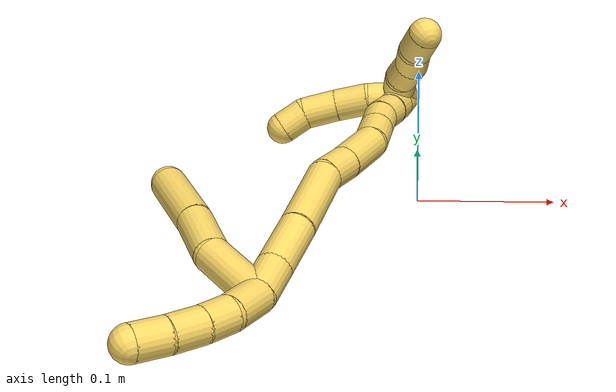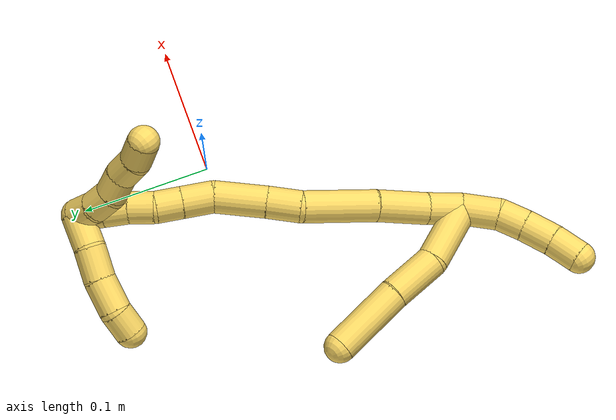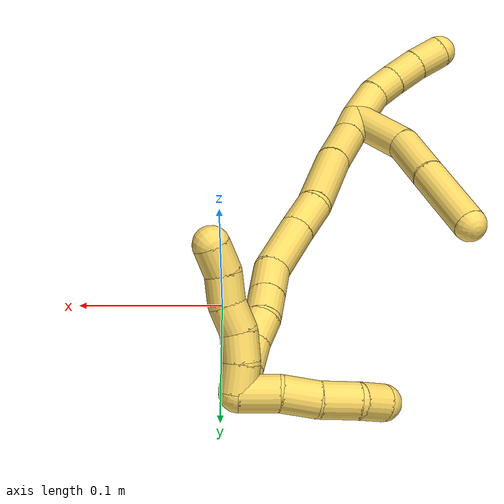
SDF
<sdf version="1.7">
 <world name="default">
  <model name="5">
   <static>0</static>
   <link name="5">
    <collision name="collision-cylinder-e_1_2_8">
     <pose>-0.001806 -0.007518 0.02417 0.301572 -0.071234 -0.010828</pose>
     <geometry><cylinder><radius>0.0125</radius><length>0.050753</length></cylinder></geometry>
     <surface>
      <friction><ode><mu>1.16</mu><mu2>1.16</mu2><slip1>0</slip1><slip2>0</slip2></ode></friction>
      <contact><ode><kp>1e+06</kp><kd>1</kd><max_vel>0</max_vel><min_depth>0.001</min_depth></ode></contact>
     </surface>
    </collision>
    <visual name="visual-cylinder-e_1_2_8">
     <pose>-0.001806 -0.007518 0.02417 0.301572 -0.071234 -0.010828</pose>
     <geometry><cylinder><radius>0.0125</radius><length>0.050753</length></cylinder></geometry>
     <material><ambient>1 0.858824 0.4 1</ambient></material>
    </visual>
    <collision name="collision-cylinder-e_2_8_9">
     <pose>-0.007481 -0.014716 0.068415 -0.015948 -0.190339 0.001522</pose>
     <geometry><cylinder><radius>0.0125</radius><length>0.040893</length></cylinder></geometry>
     <surface>
      <friction><ode><mu>1.16</mu><mu2>1.16</mu2><slip1>0</slip1><slip2>0</slip2></ode></friction>
      <contact><ode><kp>1e+06</kp><kd>1</kd><max_vel>0</max_vel><min_depth>0.001</min_depth></ode></contact>
     </surface>
    </collision>
    <visual name="visual-cylinder-e_2_8_9">
     <pose>-0.007481 -0.014716 0.068415 -0.015948 -0.190339 0.001522</pose>
     <geometry><cylinder><radius>0.0125</radius><length>0.040893</length></cylinder></geometry>
     <material><ambient>1 0.858824 0.4 1</ambient></material>
    </visual>
    <collision name="collision-cylinder-e_3_9_6">
     <pose>-0.018859 -0.015812 0.116648 0.050223 -0.260313 -0.006575</pose>
     <geometry><cylinder><radius>0.0125</radius><length>0.058353</length></cylinder></geometry>
     <surface>
      <friction><ode><mu>1.16</mu><mu2>1.16</mu2><slip1>0</slip1><slip2>0</slip2></ode></friction>
      <contact><ode><kp>1e+06</kp><kd>1</kd><max_vel>0</max_vel><min_depth>0.001</min_depth></ode></contact>
     </surface>
    </collision>
    <visual name="visual-cylinder-e_3_9_6">
     <pose>-0.018859 -0.015812 0.116648 0.050223 -0.260313 -0.006575</pose>
     <geometry><cylinder><radius>0.0125</radius><length>0.058353</length></cylinder></geometry>
     <material><ambient>1 0.858824 0.4 1</ambient></material>
    </visual>
    <collision name="collision-cylinder-e_1_2_10">
     <pose>0.005438 -0.011341 -0.007987 2.18434 0.373645 0.698726</pose>
     <geometry><cylinder><radius>0.0125</radius><length>0.029799</length></cylinder></geometry>
     <surface>
      <friction><ode><mu>1.16</mu><mu2>1.16</mu2><slip1>0</slip1><slip2>0</slip2></ode></friction>
      <contact><ode><kp>1e+06</kp><kd>1</kd><max_vel>0</max_vel><min_depth>0.001</min_depth></ode></contact>
     </surface>
    </collision>
    <visual name="visual-cylinder-e_1_2_10">
     <pose>0.005438 -0.011341 -0.007987 2.18434 0.373645 0.698726</pose>
     <geometry><cylinder><radius>0.0125</radius><length>0.029799</length></cylinder></geometry>
     <material><ambient>1 0.858824 0.4 1</ambient></material>
    </visual>
    <collision name="collision-cylinder-e_2_10_11">
     <pose>0.013995 -0.032408 -0.019338 1.9039 0.294228 0.410298</pose>
     <geometry><cylinder><radius>0.0125</radius><length>0.021505</length></cylinder></geometry>
     <surface>
      <friction><ode><mu>1.16</mu><mu2>1.16</mu2><slip1>0</slip1><slip2>0</slip2></ode></friction>
      <contact><ode><kp>1e+06</kp><kd>1</kd><max_vel>0</max_vel><min_depth>0.001</min_depth></ode></contact>
     </surface>
    </collision>
    <visual name="visual-cylinder-e_2_10_11">
     <pose>0.013995 -0.032408 -0.019338 1.9039 0.294228 0.410298</pose>
     <geometry><cylinder><radius>0.0125</radius><length>0.021505</length></cylinder></geometry>
     <material><ambient>1 0.858824 0.4 1</ambient></material>
    </visual>
    <collision name="collision-cylinder-e_3_11_12">
     <pose>0.021035 -0.053496 -0.025428 1.80611 0.323748 0.408396</pose>
     <geometry><cylinder><radius>0.0125</radius><length>0.024653</length></cylinder></geometry>
     <surface>
      <friction><ode><mu>1.16</mu><mu2>1.16</mu2><slip1>0</slip1><slip2>0</slip2></ode></friction>
      <contact><ode><kp>1e+06</kp><kd>1</kd><max_vel>0</max_vel><min_depth>0.001</min_depth></ode></contact>
     </surface>
    </collision>
    <visual name="visual-cylinder-e_3_11_12">
     <pose>0.021035 -0.053496 -0.025428 1.80611 0.323748 0.408396</pose>
     <geometry><cylinder><radius>0.0125</radius><length>0.024653</length></cylinder></geometry>
     <material><ambient>1 0.858824 0.4 1</ambient></material>
    </visual>
    <collision name="collision-cylinder-e_4_12_5">
     <pose>0.028489 -0.076259 -0.029602 1.69734 0.29833 0.337971</pose>
     <geometry><cylinder><radius>0.0125</radius><length>0.024043</length></cylinder></geometry>
     <surface>
      <friction><ode><mu>1.16</mu><mu2>1.16</mu2><slip1>0</slip1><slip2>0</slip2></ode></friction>
      <contact><ode><kp>1e+06</kp><kd>1</kd><max_vel>0</max_vel><min_depth>0.001</min_depth></ode></contact>
     </surface>
    </collision>
    <visual name="visual-cylinder-e_4_12_5">
     <pose>0.028489 -0.076259 -0.029602 1.69734 0.29833 0.337971</pose>
     <geometry><cylinder><radius>0.0125</radius><length>0.024043</length></cylinder></geometry>
     <material><ambient>1 0.858824 0.4 1</ambient></material>
    </visual>
    <collision name="collision-cylinder-e_1_2_13">
     <pose>-0.00198 0.008965 0.010418 -0.710572 -0.143043 0.053152</pose>
     <geometry><cylinder><radius>0.0125</radius><length>0.027772</length></cylinder></geometry>
     <surface>
      <friction><ode><mu>1.16</mu><mu2>1.16</mu2><slip1>0</slip1><slip2>0</slip2></ode></friction>
      <contact><ode><kp>1e+06</kp><kd>1</kd><max_vel>0</max_vel><min_depth>0.001</min_depth></ode></contact>
     </surface>
    </collision>
    <visual name="visual-cylinder-e_1_2_13">
     <pose>-0.00198 0.008965 0.010418 -0.710572 -0.143043 0.053152</pose>
     <geometry><cylinder><radius>0.0125</radius><length>0.027772</length></cylinder></geometry>
     <material><ambient>1 0.858824 0.4 1</ambient></material>
    </visual>
    <collision name="collision-cylinder-e_2_13_14">
     <pose>-0.005516 0.031479 0.035817 -0.735254 -0.076941 0.029645</pose>
     <geometry><cylinder><radius>0.0125</radius><length>0.040519</length></cylinder></geometry>
     <surface>
      <friction><ode><mu>1.16</mu><mu2>1.16</mu2><slip1>0</slip1><slip2>0</slip2></ode></friction>
      <contact><ode><kp>1e+06</kp><kd>1</kd><max_vel>0</max_vel><min_depth>0.001</min_depth></ode></contact>
     </surface>
    </collision>
    <visual name="visual-cylinder-e_2_13_14">
     <pose>-0.005516 0.031479 0.035817 -0.735254 -0.076941 0.029645</pose>
     <geometry><cylinder><radius>0.0125</radius><length>0.040519</length></cylinder></geometry>
     <material><ambient>1 0.858824 0.4 1</ambient></material>
    </visual>
    <collision name="collision-cylinder-e_3_14_15">
     <pose>-0.011143 0.063291 0.073364 -0.680387 -0.13927 0.049365</pose>
     <geometry><cylinder><radius>0.0125</radius><length>0.058627</length></cylinder></geometry>
     <surface>
      <friction><ode><mu>1.16</mu><mu2>1.16</mu2><slip1>0</slip1><slip2>0</slip2></ode></friction>
      <contact><ode><kp>1e+06</kp><kd>1</kd><max_vel>0</max_vel><min_depth>0.001</min_depth></ode></contact>
     </surface>
    </collision>
    <visual name="visual-cylinder-e_3_14_15">
     <pose>-0.011143 0.063291 0.073364 -0.680387 -0.13927 0.049365</pose>
     <geometry><cylinder><radius>0.0125</radius><length>0.058627</length></cylinder></geometry>
     <material><ambient>1 0.858824 0.4 1</ambient></material>
    </visual>
    <collision name="collision-cylinder-e_4_15_16">
     <pose>-0.019774 0.091647 0.103373 -0.935362 -0.348853 0.17753</pose>
     <geometry><cylinder><radius>0.0125</radius><length>0.026691</length></cylinder></geometry>
     <surface>
      <friction><ode><mu>1.16</mu><mu2>1.16</mu2><slip1>0</slip1><slip2>0</slip2></ode></friction>
      <contact><ode><kp>1e+06</kp><kd>1</kd><max_vel>0</max_vel><min_depth>0.001</min_depth></ode></contact>
     </surface>
    </collision>
    <visual name="visual-cylinder-e_4_15_16">
     <pose>-0.019774 0.091647 0.103373 -0.935362 -0.348853 0.17753</pose>
     <geometry><cylinder><radius>0.0125</radius><length>0.026691</length></cylinder></geometry>
     <material><ambient>1 0.858824 0.4 1</ambient></material>
    </visual>
    <collision name="collision-cylinder-e_5_16_17">
     <pose>-0.030746 0.116786 0.123183 -0.882819 -0.317986 0.15124</pose>
     <geometry><cylinder><radius>0.0125</radius><length>0.041007</length></cylinder></geometry>
     <surface>
      <friction><ode><mu>1.16</mu><mu2>1.16</mu2><slip1>0</slip1><slip2>0</slip2></ode></friction>
      <contact><ode><kp>1e+06</kp><kd>1</kd><max_vel>0</max_vel><min_depth>0.001</min_depth></ode></contact>
     </surface>
    </collision>
    <visual name="visual-cylinder-e_5_16_17">
     <pose>-0.030746 0.116786 0.123183 -0.882819 -0.317986 0.15124</pose>
     <geometry><cylinder><radius>0.0125</radius><length>0.041007</length></cylinder></geometry>
     <material><ambient>1 0.858824 0.4 1</ambient></material>
    </visual>
    <collision name="collision-cylinder-e_6_17_18">
     <pose>-0.040923 0.138071 0.145472 -0.561357 -0.310951 0.090312</pose>
     <geometry><cylinder><radius>0.0125</radius><length>0.024622</length></cylinder></geometry>
     <surface>
      <friction><ode><mu>1.16</mu><mu2>1.16</mu2><slip1>0</slip1><slip2>0</slip2></ode></friction>
      <contact><ode><kp>1e+06</kp><kd>1</kd><max_vel>0</max_vel><min_depth>0.001</min_depth></ode></contact>
     </surface>
    </collision>
    <visual name="visual-cylinder-e_6_17_18">
     <pose>-0.040923 0.138071 0.145472 -0.561357 -0.310951 0.090312</pose>
     <geometry><cylinder><radius>0.0125</radius><length>0.024622</length></cylinder></geometry>
     <material><ambient>1 0.858824 0.4 1</ambient></material>
    </visual>
    <collision name="collision-cylinder-e_7_18_19">
     <pose>-0.047797 0.149509 0.163682 -0.560224 -0.307444 0.089089</pose>
     <geometry><cylinder><radius>0.0125</radius><length>0.020531</length></cylinder></geometry>
     <surface>
      <friction><ode><mu>1.16</mu><mu2>1.16</mu2><slip1>0</slip1><slip2>0</slip2></ode></friction>
      <contact><ode><kp>1e+06</kp><kd>1</kd><max_vel>0</max_vel><min_depth>0.001</min_depth></ode></contact>
     </surface>
    </collision>
    <visual name="visual-cylinder-e_7_18_19">
     <pose>-0.047797 0.149509 0.163682 -0.560224 -0.307444 0.089089</pose>
     <geometry><cylinder><radius>0.0125</radius><length>0.020531</length></cylinder></geometry>
     <material><ambient>1 0.858824 0.4 1</ambient></material>
    </visual>
    <collision name="collision-cylinder-e_8_19_20">
     <pose>-0.055157 0.161261 0.178249 -0.806767 -0.438356 0.18957</pose>
     <geometry><cylinder><radius>0.0125</radius><length>0.020045</length></cylinder></geometry>
     <surface>
      <friction><ode><mu>1.16</mu><mu2>1.16</mu2><slip1>0</slip1><slip2>0</slip2></ode></friction>
      <contact><ode><kp>1e+06</kp><kd>1</kd><max_vel>0</max_vel><min_depth>0.001</min_depth></ode></contact>
     </surface>
    </collision>
    <visual name="visual-cylinder-e_8_19_20">
     <pose>-0.055157 0.161261 0.178249 -0.806767 -0.438356 0.18957</pose>
     <geometry><cylinder><radius>0.0125</radius><length>0.020045</length></cylinder></geometry>
     <material><ambient>1 0.858824 0.4 1</ambient></material>
    </visual>
    <collision name="collision-cylinder-e_9_20_21">
     <pose>-0.064285 0.173351 0.191393 -0.678743 -0.504737 0.181569</pose>
     <geometry><cylinder><radius>0.0125</radius><length>0.020155</length></cylinder></geometry>
     <surface>
      <friction><ode><mu>1.16</mu><mu2>1.16</mu2><slip1>0</slip1><slip2>0</slip2></ode></friction>
      <contact><ode><kp>1e+06</kp><kd>1</kd><max_vel>0</max_vel><min_depth>0.001</min_depth></ode></contact>
     </surface>
    </collision>
    <visual name="visual-cylinder-e_9_20_21">
     <pose>-0.064285 0.173351 0.191393 -0.678743 -0.504737 0.181569</pose>
     <geometry><cylinder><radius>0.0125</radius><length>0.020155</length></cylinder></geometry>
     <material><ambient>1 0.858824 0.4 1</ambient></material>
    </visual>
    <collision name="collision-cylinder-e_10_21_1">
     <pose>-0.073404 0.184431 0.20544 -0.657314 -0.437775 0.151433</pose>
     <geometry><cylinder><radius>0.0125</radius><length>0.020032</length></cylinder></geometry>
     <surface>
      <friction><ode><mu>1.16</mu><mu2>1.16</mu2><slip1>0</slip1><slip2>0</slip2></ode></friction>
      <contact><ode><kp>1e+06</kp><kd>1</kd><max_vel>0</max_vel><min_depth>0.001</min_depth></ode></contact>
     </surface>
    </collision>
    <visual name="visual-cylinder-e_10_21_1">
     <pose>-0.073404 0.184431 0.20544 -0.657314 -0.437775 0.151433</pose>
     <geometry><cylinder><radius>0.0125</radius><length>0.020032</length></cylinder></geometry>
     <material><ambient>1 0.858824 0.4 1</ambient></material>
    </visual>
    <collision name="collision-cylinder-e_1_1_22">
     <pose>-0.077719 0.177332 0.217722 1.18729 -0.005054 -0.00341</pose>
     <geometry><cylinder><radius>0.0125</radius><length>0.027265</length></cylinder></geometry>
     <surface>
      <friction><ode><mu>1.16</mu><mu2>1.16</mu2><slip1>0</slip1><slip2>0</slip2></ode></friction>
      <contact><ode><kp>1e+06</kp><kd>1</kd><max_vel>0</max_vel><min_depth>0.001</min_depth></ode></contact>
     </surface>
    </collision>
    <visual name="visual-cylinder-e_1_1_22">
     <pose>-0.077719 0.177332 0.217722 1.18729 -0.005054 -0.00341</pose>
     <geometry><cylinder><radius>0.0125</radius><length>0.027265</length></cylinder></geometry>
     <material><ambient>1 0.858824 0.4 1</ambient></material>
    </visual>
    <collision name="collision-cylinder-e_2_22_23">
     <pose>-0.08045 0.152952 0.227291 1.20708 -0.208906 -0.144283</pose>
     <geometry><cylinder><radius>0.0125</radius><length>0.025677</length></cylinder></geometry>
     <surface>
      <friction><ode><mu>1.16</mu><mu2>1.16</mu2><slip1>0</slip1><slip2>0</slip2></ode></friction>
      <contact><ode><kp>1e+06</kp><kd>1</kd><max_vel>0</max_vel><min_depth>0.001</min_depth></ode></contact>
     </surface>
    </collision>
    <visual name="visual-cylinder-e_2_22_23">
     <pose>-0.08045 0.152952 0.227291 1.20708 -0.208906 -0.144283</pose>
     <geometry><cylinder><radius>0.0125</radius><length>0.025677</length></cylinder></geometry>
     <material><ambient>1 0.858824 0.4 1</ambient></material>
    </visual>
    <collision name="collision-cylinder-e_3_23_24">
     <pose>-0.08497 0.128357 0.234581 1.35476 -0.140189 -0.112824</pose>
     <geometry><cylinder><radius>0.0125</radius><length>0.026588</length></cylinder></geometry>
     <surface>
      <friction><ode><mu>1.16</mu><mu2>1.16</mu2><slip1>0</slip1><slip2>0</slip2></ode></friction>
      <contact><ode><kp>1e+06</kp><kd>1</kd><max_vel>0</max_vel><min_depth>0.001</min_depth></ode></contact>
     </surface>
    </collision>
    <visual name="visual-cylinder-e_3_23_24">
     <pose>-0.08497 0.128357 0.234581 1.35476 -0.140189 -0.112824</pose>
     <geometry><cylinder><radius>0.0125</radius><length>0.026588</length></cylinder></geometry>
     <material><ambient>1 0.858824 0.4 1</ambient></material>
    </visual>
    <collision name="collision-cylinder-e_4_24_4">
     <pose>-0.09029 0.105894 0.236683 1.64554 -0.345037 -0.371249</pose>
     <geometry><cylinder><radius>0.0125</radius><length>0.02047</length></cylinder></geometry>
     <surface>
      <friction><ode><mu>1.16</mu><mu2>1.16</mu2><slip1>0</slip1><slip2>0</slip2></ode></friction>
      <contact><ode><kp>1e+06</kp><kd>1</kd><max_vel>0</max_vel><min_depth>0.001</min_depth></ode></contact>
     </surface>
    </collision>
    <visual name="visual-cylinder-e_4_24_4">
     <pose>-0.09029 0.105894 0.236683 1.64554 -0.345037 -0.371249</pose>
     <geometry><cylinder><radius>0.0125</radius><length>0.02047</length></cylinder></geometry>
     <material><ambient>1 0.858824 0.4 1</ambient></material>
    </visual>
    <collision name="collision-cylinder-e_1_1_25">
     <pose>-0.068571 0.187329 0.209369 2.45883 1.13826 2.12768</pose>
     <geometry><cylinder><radius>0.0125</radius><length>0.02</length></cylinder></geometry>
     <surface>
      <friction><ode><mu>1.16</mu><mu2>1.16</mu2><slip1>0</slip1><slip2>0</slip2></ode></friction>
      <contact><ode><kp>1e+06</kp><kd>1</kd><max_vel>0</max_vel><min_depth>0.001</min_depth></ode></contact>
     </surface>
    </collision>
    <visual name="visual-cylinder-e_1_1_25">
     <pose>-0.068571 0.187329 0.209369 2.45883 1.13826 2.12768</pose>
     <geometry><cylinder><radius>0.0125</radius><length>0.02</length></cylinder></geometry>
     <material><ambient>1 0.858824 0.4 1</ambient></material>
    </visual>
    <collision name="collision-cylinder-e_2_25_26">
     <pose>-0.050593 0.183801 0.20164 2.94677 1.09694 2.8244</pose>
     <geometry><cylinder><radius>0.0125</radius><length>0.02</length></cylinder></geometry>
     <surface>
      <friction><ode><mu>1.16</mu><mu2>1.16</mu2><slip1>0</slip1><slip2>0</slip2></ode></friction>
      <contact><ode><kp>1e+06</kp><kd>1</kd><max_vel>0</max_vel><min_depth>0.001</min_depth></ode></contact>
     </surface>
    </collision>
    <visual name="visual-cylinder-e_2_25_26">
     <pose>-0.050593 0.183801 0.20164 2.94677 1.09694 2.8244</pose>
     <geometry><cylinder><radius>0.0125</radius><length>0.02</length></cylinder></geometry>
     <material><ambient>1 0.858824 0.4 1</ambient></material>
    </visual>
    <collision name="collision-cylinder-e_3_26_27">
     <pose>-0.032984 0.185409 0.192933 -2.60931 1.0576 -2.26853</pose>
     <geometry><cylinder><radius>0.0125</radius><length>0.02</length></cylinder></geometry>
     <surface>
      <friction><ode><mu>1.16</mu><mu2>1.16</mu2><slip1>0</slip1><slip2>0</slip2></ode></friction>
      <contact><ode><kp>1e+06</kp><kd>1</kd><max_vel>0</max_vel><min_depth>0.001</min_depth></ode></contact>
     </surface>
    </collision>
    <visual name="visual-cylinder-e_3_26_27">
     <pose>-0.032984 0.185409 0.192933 -2.60931 1.0576 -2.26853</pose>
     <geometry><cylinder><radius>0.0125</radius><length>0.02</length></cylinder></geometry>
     <material><ambient>1 0.858824 0.4 1</ambient></material>
    </visual>
    <collision name="collision-cylinder-e_4_27_28">
     <pose>-0.01491 0.187761 0.18519 3.10181 1.2116 3.08417</pose>
     <geometry><cylinder><radius>0.0125</radius><length>0.02</length></cylinder></geometry>
     <surface>
      <friction><ode><mu>1.16</mu><mu2>1.16</mu2><slip1>0</slip1><slip2>0</slip2></ode></friction>
      <contact><ode><kp>1e+06</kp><kd>1</kd><max_vel>0</max_vel><min_depth>0.001</min_depth></ode></contact>
     </surface>
    </collision>
    <visual name="visual-cylinder-e_4_27_28">
     <pose>-0.01491 0.187761 0.18519 3.10181 1.2116 3.08417</pose>
     <geometry><cylinder><radius>0.0125</radius><length>0.02</length></cylinder></geometry>
     <material><ambient>1 0.858824 0.4 1</ambient></material>
    </visual>
    <collision name="collision-cylinder-e_5_28_3">
     <pose>0.003535 0.190466 0.178611 -2.39357 1.13922 -2.04196</pose>
     <geometry><cylinder><radius>0.0125</radius><length>0.02</length></cylinder></geometry>
     <surface>
      <friction><ode><mu>1.16</mu><mu2>1.16</mu2><slip1>0</slip1><slip2>0</slip2></ode></friction>
      <contact><ode><kp>1e+06</kp><kd>1</kd><max_vel>0</max_vel><min_depth>0.001</min_depth></ode></contact>
     </surface>
    </collision>
    <visual name="visual-cylinder-e_5_28_3">
     <pose>0.003535 0.190466 0.178611 -2.39357 1.13922 -2.04196</pose>
     <geometry><cylinder><radius>0.0125</radius><length>0.02</length></cylinder></geometry>
     <material><ambient>1 0.858824 0.4 1</ambient></material>
    </visual>
    <collision name="collision-sphere-3">
     <pose>0.012618 0.193312 0.175545 0 -0 0</pose>
     <geometry><sphere><radius>0.0125</radius></sphere></geometry>
     <surface>
      <friction><ode><mu>1.16</mu><mu2>1.16</mu2><slip1>0</slip1><slip2>0</slip2></ode></friction>
      <contact><ode><kp>1e+06</kp><kd>1</kd><max_vel>0</max_vel><min_depth>0.001</min_depth></ode></contact>
     </surface>
    </collision>
    <visual name="visual-sphere-3">
     <pose>0.012618 0.193312 0.175545 0 -0 0</pose>
     <geometry><sphere><radius>0.0125</radius></sphere></geometry>
     <material><ambient>1 0.858824 0.4 1</ambient></material>
    </visual>
    <collision name="collision-sphere-28">
     <pose>-0.005548 0.187621 0.181678 0 -0 0</pose>
     <geometry><sphere><radius>0.0125</radius></sphere></geometry>
     <surface>
      <friction><ode><mu>1.16</mu><mu2>1.16</mu2><slip1>0</slip1><slip2>0</slip2></ode></friction>
      <contact><ode><kp>1e+06</kp><kd>1</kd><max_vel>0</max_vel><min_depth>0.001</min_depth></ode></contact>
     </surface>
    </collision>
    <visual name="visual-sphere-28">
     <pose>-0.005548 0.187621 0.181678 0 -0 0</pose>
     <geometry><sphere><radius>0.0125</radius></sphere></geometry>
     <material><ambient>1 0.858824 0.4 1</ambient></material>
    </visual>
    <collision name="collision-sphere-27">
     <pose>-0.024272 0.187901 0.188703 0 -0 0</pose>
     <geometry><sphere><radius>0.0125</radius></sphere></geometry>
     <surface>
      <friction><ode><mu>1.16</mu><mu2>1.16</mu2><slip1>0</slip1><slip2>0</slip2></ode></friction>
      <contact><ode><kp>1e+06</kp><kd>1</kd><max_vel>0</max_vel><min_depth>0.001</min_depth></ode></contact>
     </surface>
    </collision>
    <visual name="visual-sphere-27">
     <pose>-0.024272 0.187901 0.188703 0 -0 0</pose>
     <geometry><sphere><radius>0.0125</radius></sphere></geometry>
     <material><ambient>1 0.858824 0.4 1</ambient></material>
    </visual>
    <collision name="collision-sphere-26">
     <pose>-0.041695 0.182917 0.197163 0 -0 0</pose>
     <geometry><sphere><radius>0.0125</radius></sphere></geometry>
     <surface>
      <friction><ode><mu>1.16</mu><mu2>1.16</mu2><slip1>0</slip1><slip2>0</slip2></ode></friction>
      <contact><ode><kp>1e+06</kp><kd>1</kd><max_vel>0</max_vel><min_depth>0.001</min_depth></ode></contact>
     </surface>
    </collision>
    <visual name="visual-sphere-26">
     <pose>-0.041695 0.182917 0.197163 0 -0 0</pose>
     <geometry><sphere><radius>0.0125</radius></sphere></geometry>
     <material><ambient>1 0.858824 0.4 1</ambient></material>
    </visual>
    <collision name="collision-sphere-25">
     <pose>-0.059492 0.184684 0.206117 0 -0 0</pose>
     <geometry><sphere><radius>0.0125</radius></sphere></geometry>
     <surface>
      <friction><ode><mu>1.16</mu><mu2>1.16</mu2><slip1>0</slip1><slip2>0</slip2></ode></friction>
      <contact><ode><kp>1e+06</kp><kd>1</kd><max_vel>0</max_vel><min_depth>0.001</min_depth></ode></contact>
     </surface>
    </collision>
    <visual name="visual-sphere-25">
     <pose>-0.059492 0.184684 0.206117 0 -0 0</pose>
     <geometry><sphere><radius>0.0125</radius></sphere></geometry>
     <material><ambient>1 0.858824 0.4 1</ambient></material>
    </visual>
    <collision name="collision-sphere-4">
     <pose>-0.093751 0.096289 0.235964 0 -0 0</pose>
     <geometry><sphere><radius>0.0125</radius></sphere></geometry>
     <surface>
      <friction><ode><mu>1.16</mu><mu2>1.16</mu2><slip1>0</slip1><slip2>0</slip2></ode></friction>
      <contact><ode><kp>1e+06</kp><kd>1</kd><max_vel>0</max_vel><min_depth>0.001</min_depth></ode></contact>
     </surface>
    </collision>
    <visual name="visual-sphere-4">
     <pose>-0.093751 0.096289 0.235964 0 -0 0</pose>
     <geometry><sphere><radius>0.0125</radius></sphere></geometry>
     <material><ambient>1 0.858824 0.4 1</ambient></material>
    </visual>
    <collision name="collision-sphere-24">
     <pose>-0.086828 0.115499 0.237403 0 -0 0</pose>
     <geometry><sphere><radius>0.0125</radius></sphere></geometry>
     <surface>
      <friction><ode><mu>1.16</mu><mu2>1.16</mu2><slip1>0</slip1><slip2>0</slip2></ode></friction>
      <contact><ode><kp>1e+06</kp><kd>1</kd><max_vel>0</max_vel><min_depth>0.001</min_depth></ode></contact>
     </surface>
    </collision>
    <visual name="visual-sphere-24">
     <pose>-0.086828 0.115499 0.237403 0 -0 0</pose>
     <geometry><sphere><radius>0.0125</radius></sphere></geometry>
     <material><ambient>1 0.858824 0.4 1</ambient></material>
    </visual>
    <collision name="collision-sphere-23">
     <pose>-0.083113 0.141215 0.231759 0 -0 0</pose>
     <geometry><sphere><radius>0.0125</radius></sphere></geometry>
     <surface>
      <friction><ode><mu>1.16</mu><mu2>1.16</mu2><slip1>0</slip1><slip2>0</slip2></ode></friction>
      <contact><ode><kp>1e+06</kp><kd>1</kd><max_vel>0</max_vel><min_depth>0.001</min_depth></ode></contact>
     </surface>
    </collision>
    <visual name="visual-sphere-23">
     <pose>-0.083113 0.141215 0.231759 0 -0 0</pose>
     <geometry><sphere><radius>0.0125</radius></sphere></geometry>
     <material><ambient>1 0.858824 0.4 1</ambient></material>
    </visual>
    <collision name="collision-sphere-22">
     <pose>-0.077788 0.16469 0.222823 0 -0 0</pose>
     <geometry><sphere><radius>0.0125</radius></sphere></geometry>
     <surface>
      <friction><ode><mu>1.16</mu><mu2>1.16</mu2><slip1>0</slip1><slip2>0</slip2></ode></friction>
      <contact><ode><kp>1e+06</kp><kd>1</kd><max_vel>0</max_vel><min_depth>0.001</min_depth></ode></contact>
     </surface>
    </collision>
    <visual name="visual-sphere-22">
     <pose>-0.077788 0.16469 0.222823 0 -0 0</pose>
     <geometry><sphere><radius>0.0125</radius></sphere></geometry>
     <material><ambient>1 0.858824 0.4 1</ambient></material>
    </visual>
    <collision name="collision-sphere-1">
     <pose>-0.07765 0.189974 0.212621 0 -0 0</pose>
     <geometry><sphere><radius>0.0125</radius></sphere></geometry>
     <surface>
      <friction><ode><mu>1.16</mu><mu2>1.16</mu2><slip1>0</slip1><slip2>0</slip2></ode></friction>
      <contact><ode><kp>1e+06</kp><kd>1</kd><max_vel>0</max_vel><min_depth>0.001</min_depth></ode></contact>
     </surface>
    </collision>
    <visual name="visual-sphere-1">
     <pose>-0.07765 0.189974 0.212621 0 -0 0</pose>
     <geometry><sphere><radius>0.0125</radius></sphere></geometry>
     <material><ambient>1 0.858824 0.4 1</ambient></material>
    </visual>
    <collision name="collision-sphere-21">
     <pose>-0.069158 0.178889 0.198259 0 -0 0</pose>
     <geometry><sphere><radius>0.0125</radius></sphere></geometry>
     <surface>
      <friction><ode><mu>1.16</mu><mu2>1.16</mu2><slip1>0</slip1><slip2>0</slip2></ode></friction>
      <contact><ode><kp>1e+06</kp><kd>1</kd><max_vel>0</max_vel><min_depth>0.001</min_depth></ode></contact>
     </surface>
    </collision>
    <visual name="visual-sphere-21">
     <pose>-0.069158 0.178889 0.198259 0 -0 0</pose>
     <geometry><sphere><radius>0.0125</radius></sphere></geometry>
     <material><ambient>1 0.858824 0.4 1</ambient></material>
    </visual>
    <collision name="collision-sphere-11">
     <pose>0.017113 -0.042132 -0.022703 0 -0 0</pose>
     <geometry><sphere><radius>0.0125</radius></sphere></geometry>
     <surface>
      <friction><ode><mu>1.16</mu><mu2>1.16</mu2><slip1>0</slip1><slip2>0</slip2></ode></friction>
      <contact><ode><kp>1e+06</kp><kd>1</kd><max_vel>0</max_vel><min_depth>0.001</min_depth></ode></contact>
     </surface>
    </collision>
    <visual name="visual-sphere-11">
     <pose>0.017113 -0.042132 -0.022703 0 -0 0</pose>
     <geometry><sphere><radius>0.0125</radius></sphere></geometry>
     <material><ambient>1 0.858824 0.4 1</ambient></material>
    </visual>
    <collision name="collision-sphere-10">
     <pose>0.010877 -0.022683 -0.015973 0 -0 0</pose>
     <geometry><sphere><radius>0.0125</radius></sphere></geometry>
     <surface>
      <friction><ode><mu>1.16</mu><mu2>1.16</mu2><slip1>0</slip1><slip2>0</slip2></ode></friction>
      <contact><ode><kp>1e+06</kp><kd>1</kd><max_vel>0</max_vel><min_depth>0.001</min_depth></ode></contact>
     </surface>
    </collision>
    <visual name="visual-sphere-10">
     <pose>0.010877 -0.022683 -0.015973 0 -0 0</pose>
     <geometry><sphere><radius>0.0125</radius></sphere></geometry>
     <material><ambient>1 0.858824 0.4 1</ambient></material>
    </visual>
    <collision name="collision-sphere-6">
     <pose>-0.026368 -0.017227 0.144806 0 -0 0</pose>
     <geometry><sphere><radius>0.0125</radius></sphere></geometry>
     <surface>
      <friction><ode><mu>1.16</mu><mu2>1.16</mu2><slip1>0</slip1><slip2>0</slip2></ode></friction>
      <contact><ode><kp>1e+06</kp><kd>1</kd><max_vel>0</max_vel><min_depth>0.001</min_depth></ode></contact>
     </surface>
    </collision>
    <visual name="visual-sphere-6">
     <pose>-0.026368 -0.017227 0.144806 0 -0 0</pose>
     <geometry><sphere><radius>0.0125</radius></sphere></geometry>
     <material><ambient>1 0.858824 0.4 1</ambient></material>
    </visual>
    <collision name="collision-sphere-9">
     <pose>-0.011349 -0.014396 0.08849 0 -0 0</pose>
     <geometry><sphere><radius>0.0125</radius></sphere></geometry>
     <surface>
      <friction><ode><mu>1.16</mu><mu2>1.16</mu2><slip1>0</slip1><slip2>0</slip2></ode></friction>
      <contact><ode><kp>1e+06</kp><kd>1</kd><max_vel>0</max_vel><min_depth>0.001</min_depth></ode></contact>
     </surface>
    </collision>
    <visual name="visual-sphere-9">
     <pose>-0.011349 -0.014396 0.08849 0 -0 0</pose>
     <geometry><sphere><radius>0.0125</radius></sphere></geometry>
     <material><ambient>1 0.858824 0.4 1</ambient></material>
    </visual>
    <collision name="collision-sphere-2">
     <geometry><sphere><radius>0.0125</radius></sphere></geometry>
     <surface>
      <friction><ode><mu>1.16</mu><mu2>1.16</mu2><slip1>0</slip1><slip2>0</slip2></ode></friction>
      <contact><ode><kp>1e+06</kp><kd>1</kd><max_vel>0</max_vel><min_depth>0.001</min_depth></ode></contact>
     </surface>
    </collision>
    <visual name="visual-sphere-2">
     <geometry><sphere><radius>0.0125</radius></sphere></geometry>
     <material><ambient>1 0.858824 0.4 1</ambient></material>
    </visual>
    <collision name="collision-sphere-19">
     <pose>-0.050903 0.154708 0.171971 0 -0 0</pose>
     <geometry><sphere><radius>0.0125</radius></sphere></geometry>
     <surface>
      <friction><ode><mu>1.16</mu><mu2>1.16</mu2><slip1>0</slip1><slip2>0</slip2></ode></friction>
      <contact><ode><kp>1e+06</kp><kd>1</kd><max_vel>0</max_vel><min_depth>0.001</min_depth></ode></contact>
     </surface>
    </collision>
    <visual name="visual-sphere-19">
     <pose>-0.050903 0.154708 0.171971 0 -0 0</pose>
     <geometry><sphere><radius>0.0125</radius></sphere></geometry>
     <material><ambient>1 0.858824 0.4 1</ambient></material>
    </visual>
    <collision name="collision-sphere-8">
     <pose>-0.003612 -0.015037 0.04834 0 -0 0</pose>
     <geometry><sphere><radius>0.0125</radius></sphere></geometry>
     <surface>
      <friction><ode><mu>1.16</mu><mu2>1.16</mu2><slip1>0</slip1><slip2>0</slip2></ode></friction>
      <contact><ode><kp>1e+06</kp><kd>1</kd><max_vel>0</max_vel><min_depth>0.001</min_depth></ode></contact>
     </surface>
    </collision>
    <visual name="visual-sphere-8">
     <pose>-0.003612 -0.015037 0.04834 0 -0 0</pose>
     <geometry><sphere><radius>0.0125</radius></sphere></geometry>
     <material><ambient>1 0.858824 0.4 1</ambient></material>
    </visual>
    <collision name="collision-sphere-12">
     <pose>0.024956 -0.064861 -0.028152 0 -0 0</pose>
     <geometry><sphere><radius>0.0125</radius></sphere></geometry>
     <surface>
      <friction><ode><mu>1.16</mu><mu2>1.16</mu2><slip1>0</slip1><slip2>0</slip2></ode></friction>
      <contact><ode><kp>1e+06</kp><kd>1</kd><max_vel>0</max_vel><min_depth>0.001</min_depth></ode></contact>
     </surface>
    </collision>
    <visual name="visual-sphere-12">
     <pose>0.024956 -0.064861 -0.028152 0 -0 0</pose>
     <geometry><sphere><radius>0.0125</radius></sphere></geometry>
     <material><ambient>1 0.858824 0.4 1</ambient></material>
    </visual>
    <collision name="collision-sphere-5">
     <pose>0.032023 -0.087658 -0.031053 0 -0 0</pose>
     <geometry><sphere><radius>0.0125</radius></sphere></geometry>
     <surface>
      <friction><ode><mu>1.16</mu><mu2>1.16</mu2><slip1>0</slip1><slip2>0</slip2></ode></friction>
      <contact><ode><kp>1e+06</kp><kd>1</kd><max_vel>0</max_vel><min_depth>0.001</min_depth></ode></contact>
     </surface>
    </collision>
    <visual name="visual-sphere-5">
     <pose>0.032023 -0.087658 -0.031053 0 -0 0</pose>
     <geometry><sphere><radius>0.0125</radius></sphere></geometry>
     <material><ambient>1 0.858824 0.4 1</ambient></material>
    </visual>
    <collision name="collision-sphere-13">
     <pose>-0.003959 0.01793 0.020836 0 -0 0</pose>
     <geometry><sphere><radius>0.0125</radius></sphere></geometry>
     <surface>
      <friction><ode><mu>1.16</mu><mu2>1.16</mu2><slip1>0</slip1><slip2>0</slip2></ode></friction>
      <contact><ode><kp>1e+06</kp><kd>1</kd><max_vel>0</max_vel><min_depth>0.001</min_depth></ode></contact>
     </surface>
    </collision>
    <visual name="visual-sphere-13">
     <pose>-0.003959 0.01793 0.020836 0 -0 0</pose>
     <geometry><sphere><radius>0.0125</radius></sphere></geometry>
     <material><ambient>1 0.858824 0.4 1</ambient></material>
    </visual>
    <collision name="collision-sphere-14">
     <pose>-0.007074 0.045028 0.050798 0 -0 0</pose>
     <geometry><sphere><radius>0.0125</radius></sphere></geometry>
     <surface>
      <friction><ode><mu>1.16</mu><mu2>1.16</mu2><slip1>0</slip1><slip2>0</slip2></ode></friction>
      <contact><ode><kp>1e+06</kp><kd>1</kd><max_vel>0</max_vel><min_depth>0.001</min_depth></ode></contact>
     </surface>
    </collision>
    <visual name="visual-sphere-14">
     <pose>-0.007074 0.045028 0.050798 0 -0 0</pose>
     <geometry><sphere><radius>0.0125</radius></sphere></geometry>
     <material><ambient>1 0.858824 0.4 1</ambient></material>
    </visual>
    <collision name="collision-sphere-15">
     <pose>-0.015212 0.081553 0.095929 0 -0 0</pose>
     <geometry><sphere><radius>0.0125</radius></sphere></geometry>
     <surface>
      <friction><ode><mu>1.16</mu><mu2>1.16</mu2><slip1>0</slip1><slip2>0</slip2></ode></friction>
      <contact><ode><kp>1e+06</kp><kd>1</kd><max_vel>0</max_vel><min_depth>0.001</min_depth></ode></contact>
     </surface>
    </collision>
    <visual name="visual-sphere-15">
     <pose>-0.015212 0.081553 0.095929 0 -0 0</pose>
     <geometry><sphere><radius>0.0125</radius></sphere></geometry>
     <material><ambient>1 0.858824 0.4 1</ambient></material>
    </visual>
    <collision name="collision-sphere-16">
     <pose>-0.024336 0.10174 0.110817 0 -0 0</pose>
     <geometry><sphere><radius>0.0125</radius></sphere></geometry>
     <surface>
      <friction><ode><mu>1.16</mu><mu2>1.16</mu2><slip1>0</slip1><slip2>0</slip2></ode></friction>
      <contact><ode><kp>1e+06</kp><kd>1</kd><max_vel>0</max_vel><min_depth>0.001</min_depth></ode></contact>
     </surface>
    </collision>
    <visual name="visual-sphere-16">
     <pose>-0.024336 0.10174 0.110817 0 -0 0</pose>
     <geometry><sphere><radius>0.0125</radius></sphere></geometry>
     <material><ambient>1 0.858824 0.4 1</ambient></material>
    </visual>
    <collision name="collision-sphere-17">
     <pose>-0.037157 0.131831 0.13555 0 -0 0</pose>
     <geometry><sphere><radius>0.0125</radius></sphere></geometry>
     <surface>
      <friction><ode><mu>1.16</mu><mu2>1.16</mu2><slip1>0</slip1><slip2>0</slip2></ode></friction>
      <contact><ode><kp>1e+06</kp><kd>1</kd><max_vel>0</max_vel><min_depth>0.001</min_depth></ode></contact>
     </surface>
    </collision>
    <visual name="visual-sphere-17">
     <pose>-0.037157 0.131831 0.13555 0 -0 0</pose>
     <geometry><sphere><radius>0.0125</radius></sphere></geometry>
     <material><ambient>1 0.858824 0.4 1</ambient></material>
    </visual>
    <collision name="collision-sphere-18">
     <pose>-0.04469 0.14431 0.155394 0 -0 0</pose>
     <geometry><sphere><radius>0.0125</radius></sphere></geometry>
     <surface>
      <friction><ode><mu>1.16</mu><mu2>1.16</mu2><slip1>0</slip1><slip2>0</slip2></ode></friction>
      <contact><ode><kp>1e+06</kp><kd>1</kd><max_vel>0</max_vel><min_depth>0.001</min_depth></ode></contact>
     </surface>
    </collision>
    <visual name="visual-sphere-18">
     <pose>-0.04469 0.14431 0.155394 0 -0 0</pose>
     <geometry><sphere><radius>0.0125</radius></sphere></geometry>
     <material><ambient>1 0.858824 0.4 1</ambient></material>
    </visual>
    <collision name="collision-sphere-20">
     <pose>-0.059411 0.167813 0.184527 0 -0 0</pose>
     <geometry><sphere><radius>0.0125</radius></sphere></geometry>
     <surface>
      <friction><ode><mu>1.16</mu><mu2>1.16</mu2><slip1>0</slip1><slip2>0</slip2></ode></friction>
      <contact><ode><kp>1e+06</kp><kd>1</kd><max_vel>0</max_vel><min_depth>0.001</min_depth></ode></contact>
     </surface>
    </collision>
    <visual name="visual-sphere-20">
     <pose>-0.059411 0.167813 0.184527 0 -0 0</pose>
     <geometry><sphere><radius>0.0125</radius></sphere></geometry>
     <material><ambient>1 0.858824 0.4 1</ambient></material>
    </visual>
    <inertial>
     <pose>-0.026633 0.075073 0.111184 0 -0 0</pose>
     <mass>0.75</mass>
     <inertia><ixx>0.000105</ixx><ixy>0</ixy><ixz>0</ixz><iyy>8.8e-05</iyy><iyz>0</iyz><izz>2.4e-05</izz></inertia>
    </inertial>
   </link>
   <pose>-0.099705 -0.17373 0.01154 0.475336 -1.19159 -1.62694</pose>
  </model>
 </world>
</sdf>
